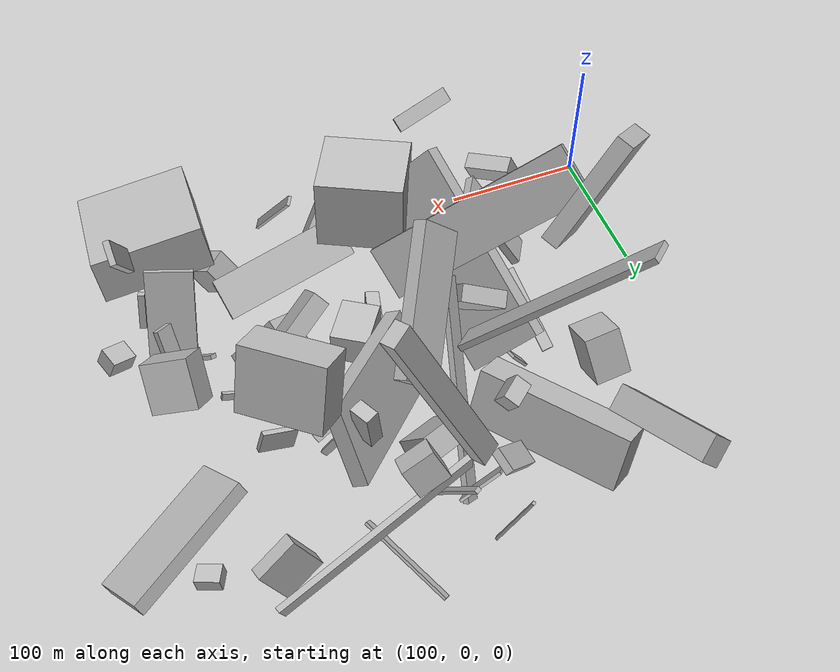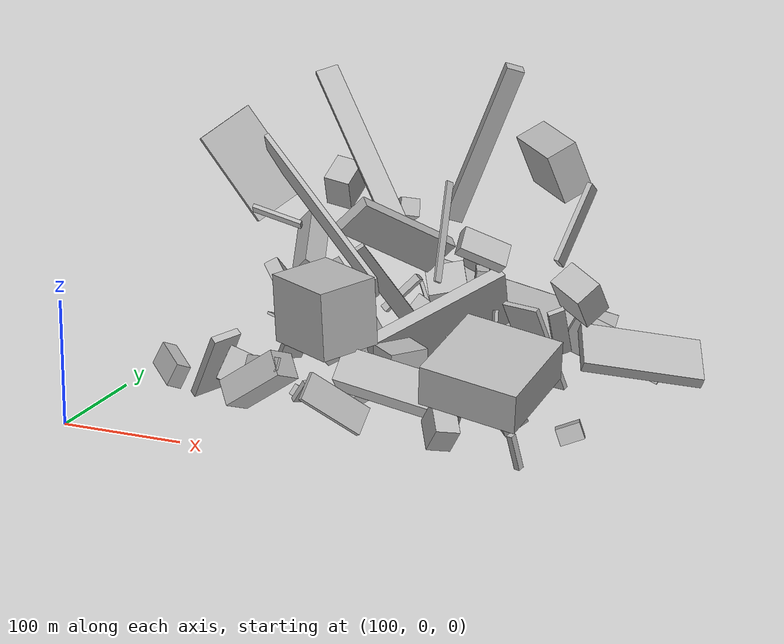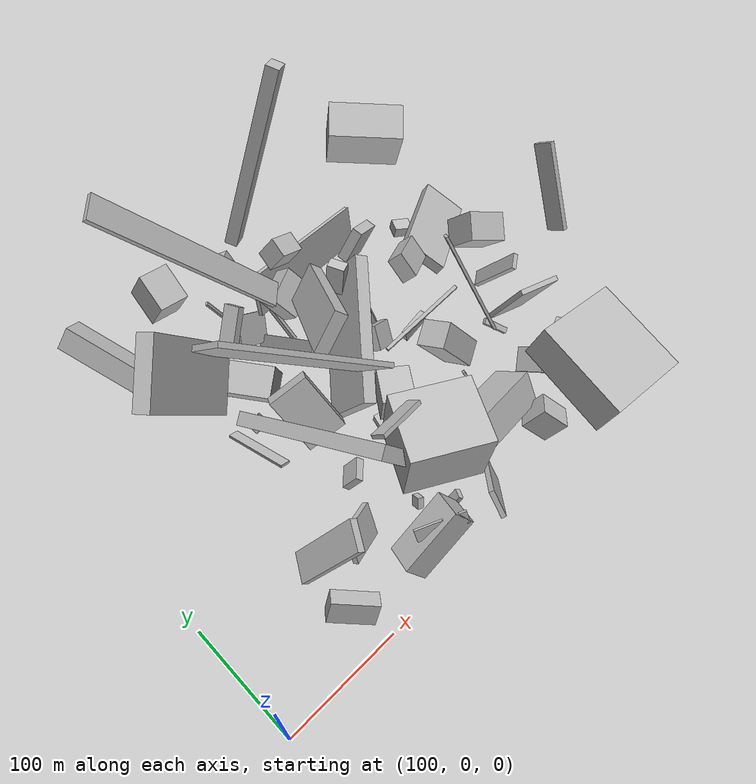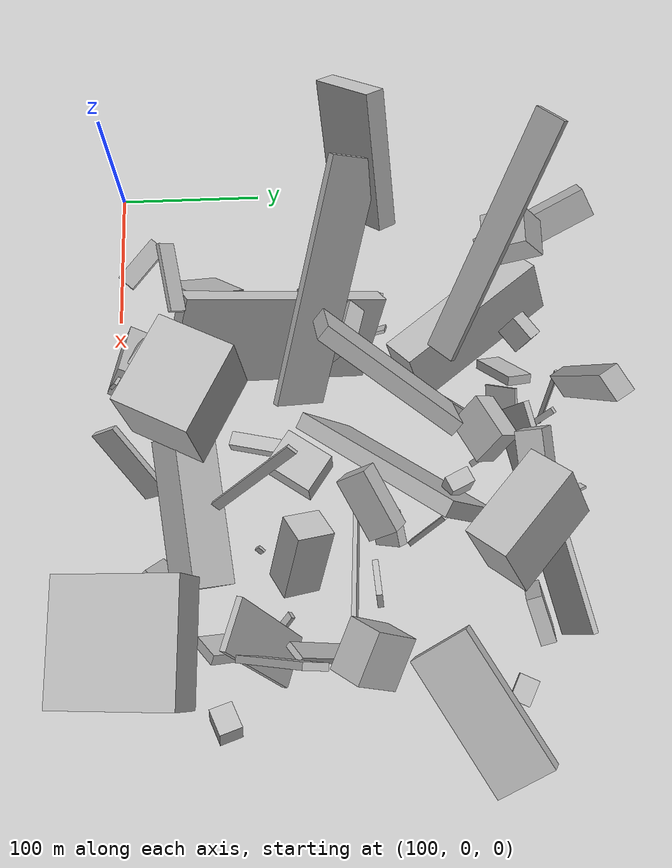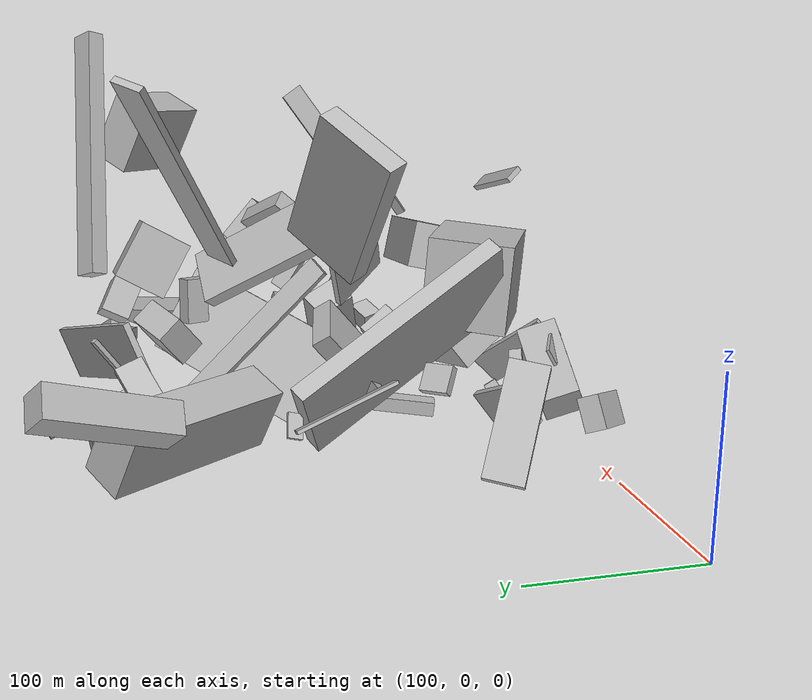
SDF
<sdf version="1.6">
 <world name="default">
  <model name="building_4">
   <static>0</static>
   <pose>246.0392381697584 112.40709381723941 72.94121580072749 0.8314418925521231 -0.8509778097233889 2.696568925000398</pose>
   <link name="link">
    <gravity>0</gravity>
    <pose>0 0 5.5 0 0 0</pose>
    <collision name="collision"><geometry><box><size>59 145 11</size></box></geometry></collision>
    <visual name="visual">
     <cast_shadows>0</cast_shadows>
     <geometry><box><size>59 145 11</size></box></geometry>
     <material>
      <script>
       <uri>model://HANNAS_wall/materials/scripts</uri>
       <uri>model://HANNAS_wall/materials/textures</uri>
       <name>vrc/HANNAS_wall</name>
      </script>
     </material>
    </visual>
   </link>
  </model>
  <model name="building_5">
   <static>0</static>
   <pose>287.5229218052627 213.38739787235647 123.43802710903616 0.73372761388437 0.2270527168911474 -2.3873085260724936</pose>
   <link name="link">
    <gravity>0</gravity>
    <pose>0 0 75.0 0 0 0</pose>
    <collision name="collision"><geometry><box><size>19 4 150</size></box></geometry></collision>
    <visual name="visual">
     <cast_shadows>0</cast_shadows>
     <geometry><box><size>19 4 150</size></box></geometry>
     <material>
      <script>
       <uri>model://HANNAS_wall/materials/scripts</uri>
       <uri>model://HANNAS_wall/materials/textures</uri>
       <name>vrc/HANNAS_wall</name>
      </script>
     </material>
    </visual>
   </link>
  </model>
  <model name="building_11">
   <static>0</static>
   <pose>305.34416889173406 286.51877537634414 113.38540585402663 -0.25738495963674096 -0.30998204344259406 -2.5458783594934444</pose>
   <link name="link">
    <gravity>0</gravity>
    <pose>0 0 72.0 0 0 0</pose>
    <collision name="collision"><geometry><box><size>15 10 144</size></box></geometry></collision>
    <visual name="visual">
     <cast_shadows>0</cast_shadows>
     <geometry><box><size>15 10 144</size></box></geometry>
     <material>
      <script>
       <uri>model://HANNAS_wall/materials/scripts</uri>
       <uri>model://HANNAS_wall/materials/textures</uri>
       <name>vrc/HANNAS_wall</name>
      </script>
     </material>
    </visual>
   </link>
  </model>
  <model name="building_13">
   <static>0</static>
   <pose>264.48225167235995 198.23878747054633 40.77193721252804 1.5332335217083308 0.4482326884495188 -2.51620579279033</pose>
   <link name="link">
    <gravity>0</gravity>
    <pose>0 0 54.5 0 0 0</pose>
    <collision name="collision"><geometry><box><size>26 39 109</size></box></geometry></collision>
    <visual name="visual">
     <cast_shadows>0</cast_shadows>
     <geometry><box><size>26 39 109</size></box></geometry>
     <material>
      <script>
       <uri>model://HANNAS_wall/materials/scripts</uri>
       <uri>model://HANNAS_wall/materials/textures</uri>
       <name>vrc/HANNAS_wall</name>
      </script>
     </material>
    </visual>
   </link>
  </model>
  <model name="building_25">
   <static>0</static>
   <pose>354.780059556248 68.91982962822244 39.401578939200036 0.935533526245235 0.2141554111805798 0.10981015580507866</pose>
   <link name="link">
    <gravity>0</gravity>
    <pose>0 0 15.0 0 0 0</pose>
    <collision name="collision"><geometry><box><size>97 28 30</size></box></geometry></collision>
    <visual name="visual">
     <cast_shadows>0</cast_shadows>
     <geometry><box><size>97 28 30</size></box></geometry>
     <material>
      <script>
       <uri>model://HANNAS_wall/materials/scripts</uri>
       <uri>model://HANNAS_wall/materials/textures</uri>
       <name>vrc/HANNAS_wall</name>
      </script>
     </material>
    </visual>
   </link>
  </model>
  <model name="building_26">
   <static>0</static>
   <pose>447.8451436361768 59.502343330706104 91.80245957601797 1.8022780283147475 0.1440748117896792 -0.04991635219224347</pose>
   <link name="link">
    <gravity>0</gravity>
    <pose>0 0 40.0 0 0 0</pose>
    <collision name="collision"><geometry><box><size>77 32 80</size></box></geometry></collision>
    <visual name="visual">
     <cast_shadows>0</cast_shadows>
     <geometry><box><size>77 32 80</size></box></geometry>
     <material>
      <script>
       <uri>model://HANNAS_wall/materials/scripts</uri>
       <uri>model://HANNAS_wall/materials/textures</uri>
       <name>vrc/HANNAS_wall</name>
      </script>
     </material>
    </visual>
   </link>
  </model>
  <model name="building_31">
   <static>0</static>
   <pose>311.9223770849996 182.14420041256554 138.3061652181933 2.5432250968559402 0.5255048459266045 -0.8384274217295999</pose>
   <link name="link">
    <gravity>0</gravity>
    <pose>0 0 16.5 0 0 0</pose>
    <collision name="collision"><geometry><box><size>10 101 33</size></box></geometry></collision>
    <visual name="visual">
     <cast_shadows>0</cast_shadows>
     <geometry><box><size>10 101 33</size></box></geometry>
     <material>
      <script>
       <uri>model://HANNAS_wall/materials/scripts</uri>
       <uri>model://HANNAS_wall/materials/textures</uri>
       <name>vrc/HANNAS_wall</name>
      </script>
     </material>
    </visual>
   </link>
  </model>
  <model name="building_32">
   <static>0</static>
   <pose>473.5617789788256 121.758763702298 168.416634408525 0.30198070280258865 -0.9400561170758166 1.226183920578841</pose>
   <link name="link">
    <gravity>0</gravity>
    <pose>0 0 7.5 0 0 0</pose>
    <collision name="collision"><geometry><box><size>64 4 15</size></box></geometry></collision>
    <visual name="visual">
     <cast_shadows>0</cast_shadows>
     <geometry><box><size>64 4 15</size></box></geometry>
     <material>
      <script>
       <uri>model://HANNAS_wall/materials/scripts</uri>
       <uri>model://HANNAS_wall/materials/textures</uri>
       <name>vrc/HANNAS_wall</name>
      </script>
     </material>
    </visual>
   </link>
  </model>
  <model name="building_35">
   <static>0</static>
   <pose>306.7212315610256 127.46683124068255 99.01429808339688 -0.6370680333195952 0.666483974549632 1.9316752935614816</pose>
   <link name="link">
    <gravity>0</gravity>
    <pose>0 0 75.0 0 0 0</pose>
    <collision name="collision"><geometry><box><size>37 4 150</size></box></geometry></collision>
    <visual name="visual">
     <cast_shadows>0</cast_shadows>
     <geometry><box><size>37 4 150</size></box></geometry>
     <material>
      <script>
       <uri>model://HANNAS_wall/materials/scripts</uri>
       <uri>model://HANNAS_wall/materials/textures</uri>
       <name>vrc/HANNAS_wall</name>
      </script>
     </material>
    </visual>
   </link>
  </model>
  <model name="building_40">
   <static>0</static>
   <pose>196.22379663635272 66.03756990982114 44.847923159565646 2.195942374353668 -0.11746353973589373 1.0421103361070279</pose>
   <link name="link">
    <gravity>0</gravity>
    <pose>0 0 3.0 0 0 0</pose>
    <collision name="collision"><geometry><box><size>24 70 6</size></box></geometry></collision>
    <visual name="visual">
     <cast_shadows>0</cast_shadows>
     <geometry><box><size>24 70 6</size></box></geometry>
     <material>
      <script>
       <uri>model://HANNAS_wall/materials/scripts</uri>
       <uri>model://HANNAS_wall/materials/textures</uri>
       <name>vrc/HANNAS_wall</name>
      </script>
     </material>
    </visual>
   </link>
  </model>
  <model name="building_42">
   <static>0</static>
   <pose>413.5281500367438 251.74328512992653 162.5584119064588 0.42518302474043196 0.08525247721073136 -0.7349285900145905</pose>
   <link name="link">
    <gravity>0</gravity>
    <pose>0 0 21.5 0 0 0</pose>
    <collision name="collision"><geometry><box><size>54 26 43</size></box></geometry></collision>
    <visual name="visual">
     <cast_shadows>0</cast_shadows>
     <geometry><box><size>54 26 43</size></box></geometry>
     <material>
      <script>
       <uri>model://HANNAS_wall/materials/scripts</uri>
       <uri>model://HANNAS_wall/materials/textures</uri>
       <name>vrc/HANNAS_wall</name>
      </script>
     </material>
    </visual>
   </link>
  </model>
  <model name="building_47">
   <static>0</static>
   <pose>282.3333516618749 206.32558568765282 60.27367444680189 -0.6378160163743561 -0.8135453570839897 -1.7786275774059461</pose>
   <link name="link">
    <gravity>0</gravity>
    <pose>0 0 6.5 0 0 0</pose>
    <collision name="collision"><geometry><box><size>150 4 13</size></box></geometry></collision>
    <visual name="visual">
     <cast_shadows>0</cast_shadows>
     <geometry><box><size>150 4 13</size></box></geometry>
     <material>
      <script>
       <uri>model://HANNAS_wall/materials/scripts</uri>
       <uri>model://HANNAS_wall/materials/textures</uri>
       <name>vrc/HANNAS_wall</name>
      </script>
     </material>
    </visual>
   </link>
  </model>
  <model name="building_52">
   <static>0</static>
   <pose>260.45096502845166 31.132917213910975 47.480260439311145 1.1229656785537947 -0.6097243819232256 -0.043908216196138904</pose>
   <link name="link">
    <gravity>0</gravity>
    <pose>0 0 12.0 0 0 0</pose>
    <collision name="collision"><geometry><box><size>54 21 24</size></box></geometry></collision>
    <visual name="visual">
     <cast_shadows>0</cast_shadows>
     <geometry><box><size>54 21 24</size></box></geometry>
     <material>
      <script>
       <uri>model://HANNAS_wall/materials/scripts</uri>
       <uri>model://HANNAS_wall/materials/textures</uri>
       <name>vrc/HANNAS_wall</name>
      </script>
     </material>
    </visual>
   </link>
  </model>
  <model name="building_56">
   <static>0</static>
   <pose>353.1146900377908 229.15745046192978 81.06606824895431 1.6246591654610778 0.09088854913317261 0.43664834529230867</pose>
   <link name="link">
    <gravity>0</gravity>
    <pose>0 0 7.5 0 0 0</pose>
    <collision name="collision"><geometry><box><size>10 28 15</size></box></geometry></collision>
    <visual name="visual">
     <cast_shadows>0</cast_shadows>
     <geometry><box><size>10 28 15</size></box></geometry>
     <material>
      <script>
       <uri>model://HANNAS_wall/materials/scripts</uri>
       <uri>model://HANNAS_wall/materials/textures</uri>
       <name>vrc/HANNAS_wall</name>
      </script>
     </material>
    </visual>
   </link>
  </model>
  <model name="building_57">
   <static>0</static>
   <pose>372.8397094920472 229.54579999024057 72.28215962919838 2.254910144712333 -1.003458802321089 -1.3164508423487904</pose>
   <link name="link">
    <gravity>0</gravity>
    <pose>0 0 61.5 0 0 0</pose>
    <collision name="collision"><geometry><box><size>59 11 123</size></box></geometry></collision>
    <visual name="visual">
     <cast_shadows>0</cast_shadows>
     <geometry><box><size>59 11 123</size></box></geometry>
     <material>
      <script>
       <uri>model://HANNAS_wall/materials/scripts</uri>
       <uri>model://HANNAS_wall/materials/textures</uri>
       <name>vrc/HANNAS_wall</name>
      </script>
     </material>
    </visual>
   </link>
  </model>
  <model name="building_61">
   <static>0</static>
   <pose>454.4455979796617 157.19957674618342 95.64992392870477 -0.5362597075483604 -0.8630973474018058 -1.589940140255707</pose>
   <link name="link">
    <gravity>0</gravity>
    <pose>0 0 11.5 0 0 0</pose>
    <collision name="collision"><geometry><box><size>33 32 23</size></box></geometry></collision>
    <visual name="visual">
     <cast_shadows>0</cast_shadows>
     <geometry><box><size>33 32 23</size></box></geometry>
     <material>
      <script>
       <uri>model://HANNAS_wall/materials/scripts</uri>
       <uri>model://HANNAS_wall/materials/textures</uri>
       <name>vrc/HANNAS_wall</name>
      </script>
     </material>
    </visual>
   </link>
  </model>
  <model name="building_64">
   <static>0</static>
   <pose>301.7135998658954 262.4967223012218 66.36645070043379 2.351691197250459 -1.1669851162304328 1.0849620932479414</pose>
   <link name="link">
    <gravity>0</gravity>
    <pose>0 0 75.0 0 0 0</pose>
    <collision name="collision"><geometry><box><size>36 4 150</size></box></geometry></collision>
    <visual name="visual">
     <cast_shadows>0</cast_shadows>
     <geometry><box><size>36 4 150</size></box></geometry>
     <material>
      <script>
       <uri>model://HANNAS_wall/materials/scripts</uri>
       <uri>model://HANNAS_wall/materials/textures</uri>
       <name>vrc/HANNAS_wall</name>
      </script>
     </material>
    </visual>
   </link>
  </model>
  <model name="building_65">
   <static>0</static>
   <pose>385.9157158319795 136.11774128148485 46.58962567178883 1.1092816661097866 -0.4267034483785469 0.4796998627245925</pose>
   <link name="link">
    <gravity>0</gravity>
    <pose>0 0 12.5 0 0 0</pose>
    <collision name="collision"><geometry><box><size>22 49 25</size></box></geometry></collision>
    <visual name="visual">
     <cast_shadows>0</cast_shadows>
     <geometry><box><size>22 49 25</size></box></geometry>
     <material>
      <script>
       <uri>model://HANNAS_wall/materials/scripts</uri>
       <uri>model://HANNAS_wall/materials/textures</uri>
       <name>vrc/HANNAS_wall</name>
      </script>
     </material>
    </visual>
   </link>
  </model>
  <model name="building_69">
   <static>0</static>
   <pose>436.08399933277644 271.3796080361466 45.21805190600404 -2.664721027043559 -0.257553861634617 1.7644111512376273</pose>
   <link name="link">
    <gravity>0</gravity>
    <pose>0 0 16.5 0 0 0</pose>
    <collision name="collision"><geometry><box><size>10 31 33</size></box></geometry></collision>
    <visual name="visual">
     <cast_shadows>0</cast_shadows>
     <geometry><box><size>10 31 33</size></box></geometry>
     <material>
      <script>
       <uri>model://HANNAS_wall/materials/scripts</uri>
       <uri>model://HANNAS_wall/materials/textures</uri>
       <name>vrc/HANNAS_wall</name>
      </script>
     </material>
    </visual>
   </link>
  </model>
  <model name="building_72">
   <static>0</static>
   <pose>454.28340206718485 117.21335669131878 44.15490676215887 -0.030163057962086556 -0.4453551707273067 1.2679857277166433</pose>
   <link name="link">
    <gravity>0</gravity>
    <pose>0 0 38.5 0 0 0</pose>
    <collision name="collision"><geometry><box><size>4 32 77</size></box></geometry></collision>
    <visual name="visual">
     <cast_shadows>0</cast_shadows>
     <geometry><box><size>4 32 77</size></box></geometry>
     <material>
      <script>
       <uri>model://HANNAS_wall/materials/scripts</uri>
       <uri>model://HANNAS_wall/materials/textures</uri>
       <name>vrc/HANNAS_wall</name>
      </script>
     </material>
    </visual>
   </link>
  </model>
  <model name="building_85">
   <static>0</static>
   <pose>240.416222263331 65.22586051979188 34.28164811245603 -1.0879324687507288 0.44846417510124187 2.133225262691642</pose>
   <link name="link">
    <gravity>0</gravity>
    <pose>0 0 17.5 0 0 0</pose>
    <collision name="collision"><geometry><box><size>4 28 35</size></box></geometry></collision>
    <visual name="visual">
     <cast_shadows>0</cast_shadows>
     <geometry><box><size>4 28 35</size></box></geometry>
     <material>
      <script>
       <uri>model://HANNAS_wall/materials/scripts</uri>
       <uri>model://HANNAS_wall/materials/textures</uri>
       <name>vrc/HANNAS_wall</name>
      </script>
     </material>
    </visual>
   </link>
  </model>
  <model name="building_91">
   <static>0</static>
   <pose>320.65696987921797 8.348453931691092 34.6121324711334 0.5003229618236404 -0.641744812973406 -2.418009031039265</pose>
   <link name="link">
    <gravity>0</gravity>
    <pose>0 0 11.5 0 0 0</pose>
    <collision name="collision"><geometry><box><size>56 4 23</size></box></geometry></collision>
    <visual name="visual">
     <cast_shadows>0</cast_shadows>
     <geometry><box><size>56 4 23</size></box></geometry>
     <material>
      <script>
       <uri>model://HANNAS_wall/materials/scripts</uri>
       <uri>model://HANNAS_wall/materials/textures</uri>
       <name>vrc/HANNAS_wall</name>
      </script>
     </material>
    </visual>
   </link>
  </model>
  <model name="building_92">
   <static>0</static>
   <pose>316.45136220696304 249.41329582388735 66.57314789769855 -0.2434915443502975 -0.8329252587732981 2.1820408574203</pose>
   <link name="link">
    <gravity>0</gravity>
    <pose>0 0 8.5 0 0 0</pose>
    <collision name="collision"><geometry><box><size>26 32 17</size></box></geometry></collision>
    <visual name="visual">
     <cast_shadows>0</cast_shadows>
     <geometry><box><size>26 32 17</size></box></geometry>
     <material>
      <script>
       <uri>model://HANNAS_wall/materials/scripts</uri>
       <uri>model://HANNAS_wall/materials/textures</uri>
       <name>vrc/HANNAS_wall</name>
      </script>
     </material>
    </visual>
   </link>
  </model>
  <model name="building_95">
   <static>0</static>
   <pose>453.08212961319083 149.34328527232154 59.796124895381276 0.5402470935774003 -0.2983659411562641 0.6074694178092093</pose>
   <link name="link">
    <gravity>0</gravity>
    <pose>0 0 25.5 0 0 0</pose>
    <collision name="collision"><geometry><box><size>13 4 51</size></box></geometry></collision>
    <visual name="visual">
     <cast_shadows>0</cast_shadows>
     <geometry><box><size>13 4 51</size></box></geometry>
     <material>
      <script>
       <uri>model://HANNAS_wall/materials/scripts</uri>
       <uri>model://HANNAS_wall/materials/textures</uri>
       <name>vrc/HANNAS_wall</name>
      </script>
     </material>
    </visual>
   </link>
  </model>
  <model name="building_96">
   <static>0</static>
   <pose>446.94522591125275 207.65425903575442 45.12656190214735 -1.7895482205843147 0.51765319940733 -1.1455745047781436</pose>
   <link name="link">
    <gravity>0</gravity>
    <pose>0 0 49.0 0 0 0</pose>
    <collision name="collision"><geometry><box><size>42 10 98</size></box></geometry></collision>
    <visual name="visual">
     <cast_shadows>0</cast_shadows>
     <geometry><box><size>42 10 98</size></box></geometry>
     <material>
      <script>
       <uri>model://HANNAS_wall/materials/scripts</uri>
       <uri>model://HANNAS_wall/materials/textures</uri>
       <name>vrc/HANNAS_wall</name>
      </script>
     </material>
    </visual>
   </link>
  </model>
  <model name="building_106">
   <static>0</static>
   <pose>395.75903653468845 33.83776815754533 22.225794874066523 -0.21734268041119242 0.6255718339156412 -0.9968305583392614</pose>
   <link name="link">
    <gravity>0</gravity>
    <pose>0 0 12.0 0 0 0</pose>
    <collision name="collision"><geometry><box><size>26 19 24</size></box></geometry></collision>
    <visual name="visual">
     <cast_shadows>0</cast_shadows>
     <geometry><box><size>26 19 24</size></box></geometry>
     <material>
      <script>
       <uri>model://HANNAS_wall/materials/scripts</uri>
       <uri>model://HANNAS_wall/materials/textures</uri>
       <name>vrc/HANNAS_wall</name>
      </script>
     </material>
    </visual>
   </link>
  </model>
  <model name="building_107">
   <static>0</static>
   <pose>185.52399391607366 27.468730476848506 49.8732657765925 1.1753756690091286 0.23196477853583486 -0.761419468302994</pose>
   <link name="link">
    <gravity>0</gravity>
    <pose>0 0 6.0 0 0 0</pose>
    <collision name="collision"><geometry><box><size>34 19 12</size></box></geometry></collision>
    <visual name="visual">
     <cast_shadows>0</cast_shadows>
     <geometry><box><size>34 19 12</size></box></geometry>
     <material>
      <script>
       <uri>model://HANNAS_wall/materials/scripts</uri>
       <uri>model://HANNAS_wall/materials/textures</uri>
       <name>vrc/HANNAS_wall</name>
      </script>
     </material>
    </visual>
   </link>
  </model>
  <model name="building_111">
   <static>0</static>
   <pose>250.73970251106488 163.23338309867165 92.17581460422792 -2.6780576166435197 -0.5688414199330818 -2.0716317546886214</pose>
   <link name="link">
    <gravity>0</gravity>
    <pose>0 0 25.0 0 0 0</pose>
    <collision name="collision"><geometry><box><size>12 33 50</size></box></geometry></collision>
    <visual name="visual">
     <cast_shadows>0</cast_shadows>
     <geometry><box><size>12 33 50</size></box></geometry>
     <material>
      <script>
       <uri>model://HANNAS_wall/materials/scripts</uri>
       <uri>model://HANNAS_wall/materials/textures</uri>
       <name>vrc/HANNAS_wall</name>
      </script>
     </material>
    </visual>
   </link>
  </model>
  <model name="building_112">
   <static>0</static>
   <pose>377.76159432947037 79.68784375502347 126.55154371471686 -0.5059033037430103 -0.37675251709523605 -0.3878019536221783</pose>
   <link name="link">
    <gravity>0</gravity>
    <pose>0 0 40.0 0 0 0</pose>
    <collision name="collision"><geometry><box><size>2 6 80</size></box></geometry></collision>
    <visual name="visual">
     <cast_shadows>0</cast_shadows>
     <geometry><box><size>2 6 80</size></box></geometry>
     <material>
      <script>
       <uri>model://HANNAS_wall/materials/scripts</uri>
       <uri>model://HANNAS_wall/materials/textures</uri>
       <name>vrc/HANNAS_wall</name>
      </script>
     </material>
    </visual>
   </link>
  </model>
  <model name="building_128">
   <static>0</static>
   <pose>280.2565296004384 257.2763924448837 127.4677126122923 2.068020042494187 -0.19845036680315034 -2.477907632876731</pose>
   <link name="link">
    <gravity>0</gravity>
    <pose>0 0 5.5 0 0 0</pose>
    <collision name="collision"><geometry><box><size>16 15 11</size></box></geometry></collision>
    <visual name="visual">
     <cast_shadows>0</cast_shadows>
     <geometry><box><size>16 15 11</size></box></geometry>
     <material>
      <script>
       <uri>model://HANNAS_wall/materials/scripts</uri>
       <uri>model://HANNAS_wall/materials/textures</uri>
       <name>vrc/HANNAS_wall</name>
      </script>
     </material>
    </visual>
   </link>
  </model>
  <model name="building_130">
   <static>0</static>
   <pose>434.6190188717201 67.3855622748862 22.317455046680823 0.8487876148262001 -0.6623849304663758 2.7362673815367633</pose>
   <link name="link">
    <gravity>0</gravity>
    <pose>0 0 10.5 0 0 0</pose>
    <collision name="collision"><geometry><box><size>7 26 21</size></box></geometry></collision>
    <visual name="visual">
     <cast_shadows>0</cast_shadows>
     <geometry><box><size>7 26 21</size></box></geometry>
     <material>
      <script>
       <uri>model://HANNAS_wall/materials/scripts</uri>
       <uri>model://HANNAS_wall/materials/textures</uri>
       <name>vrc/HANNAS_wall</name>
      </script>
     </material>
    </visual>
   </link>
  </model>
  <model name="building_131">
   <static>0</static>
   <pose>434.077469156358 112.13345040199829 45.20937891985273 0.4895560917319079 0.6068814602045193 -0.7798696031605232</pose>
   <link name="link">
    <gravity>0</gravity>
    <pose>0 0 1.5 0 0 0</pose>
    <collision name="collision"><geometry><box><size>24 5 3</size></box></geometry></collision>
    <visual name="visual">
     <cast_shadows>0</cast_shadows>
     <geometry><box><size>24 5 3</size></box></geometry>
     <material>
      <script>
       <uri>model://HANNAS_wall/materials/scripts</uri>
       <uri>model://HANNAS_wall/materials/textures</uri>
       <name>vrc/HANNAS_wall</name>
      </script>
     </material>
    </visual>
   </link>
  </model>
  <model name="building_146">
   <static>0</static>
   <pose>456.26317906217804 35.78442124592096 18.705291205594964 1.5317019867256643 -0.28252553690335863 1.2298174361894851</pose>
   <link name="link">
    <gravity>0</gravity>
    <pose>0 0 2.5 0 0 0</pose>
    <collision name="collision"><geometry><box><size>5 29 5</size></box></geometry></collision>
    <visual name="visual">
     <cast_shadows>0</cast_shadows>
     <geometry><box><size>5 29 5</size></box></geometry>
     <material>
      <script>
       <uri>model://HANNAS_wall/materials/scripts</uri>
       <uri>model://HANNAS_wall/materials/textures</uri>
       <name>vrc/HANNAS_wall</name>
      </script>
     </material>
    </visual>
   </link>
  </model>
  <model name="building_153">
   <static>0</static>
   <pose>291.0009950655417 32.86070005391955 43.388569477439624 -1.2447094692726133 0.9730975646134671 2.9104955311684546</pose>
   <link name="link">
    <gravity>0</gravity>
    <pose>0 0 4.0 0 0 0</pose>
    <collision name="collision"><geometry><box><size>20 4 8</size></box></geometry></collision>
    <visual name="visual">
     <cast_shadows>0</cast_shadows>
     <geometry><box><size>20 4 8</size></box></geometry>
     <material>
      <script>
       <uri>model://HANNAS_wall/materials/scripts</uri>
       <uri>model://HANNAS_wall/materials/textures</uri>
       <name>vrc/HANNAS_wall</name>
      </script>
     </material>
    </visual>
   </link>
  </model>
  <model name="building_154">
   <static>0</static>
   <pose>318.1374322384538 112.27079649913779 42.66951852603398 -1.6466366232079241 -1.515610139694536 -0.5426875106636128</pose>
   <link name="link">
    <gravity>0</gravity>
    <pose>0 0 16.5 0 0 0</pose>
    <collision name="collision"><geometry><box><size>25 27 33</size></box></geometry></collision>
    <visual name="visual">
     <cast_shadows>0</cast_shadows>
     <geometry><box><size>25 27 33</size></box></geometry>
     <material>
      <script>
       <uri>model://HANNAS_wall/materials/scripts</uri>
       <uri>model://HANNAS_wall/materials/textures</uri>
       <name>vrc/HANNAS_wall</name>
      </script>
     </material>
    </visual>
   </link>
  </model>
  <model name="building_155">
   <static>0</static>
   <pose>231.01100387645133 182.44403257926749 39.36619821739271 2.2267940665498998 -0.27893308383891185 1.6836819148969757</pose>
   <link name="link">
    <gravity>0</gravity>
    <pose>0 0 1.0 0 0 0</pose>
    <collision name="collision"><geometry><box><size>9 15 2</size></box></geometry></collision>
    <visual name="visual">
     <cast_shadows>0</cast_shadows>
     <geometry><box><size>9 15 2</size></box></geometry>
     <material>
      <script>
       <uri>model://HANNAS_wall/materials/scripts</uri>
       <uri>model://HANNAS_wall/materials/textures</uri>
       <name>vrc/HANNAS_wall</name>
      </script>
     </material>
    </visual>
   </link>
  </model>
  <model name="building_156">
   <static>0</static>
   <pose>322.195557528922 42.64585964900399 100.81195502283143 1.5473486673827548 0.07119088712216483 -2.0610438820339554</pose>
   <link name="link">
    <gravity>0</gravity>
    <pose>0 0 30.0 0 0 0</pose>
    <collision name="collision"><geometry><box><size>51 54 60</size></box></geometry></collision>
    <visual name="visual">
     <cast_shadows>0</cast_shadows>
     <geometry><box><size>51 54 60</size></box></geometry>
     <material>
      <script>
       <uri>model://HANNAS_wall/materials/scripts</uri>
       <uri>model://HANNAS_wall/materials/textures</uri>
       <name>vrc/HANNAS_wall</name>
      </script>
     </material>
    </visual>
   </link>
  </model>
  <model name="building_157">
   <static>0</static>
   <pose>275.50366368404934 52.91177106332048 33.085630806211604 0.9771732514532435 0.2697372526970967 -0.3404347002122373</pose>
   <link name="link">
    <gravity>0</gravity>
    <pose>0 0 4.0 0 0 0</pose>
    <collision name="collision"><geometry><box><size>5 9 8</size></box></geometry></collision>
    <visual name="visual">
     <cast_shadows>0</cast_shadows>
     <geometry><box><size>5 9 8</size></box></geometry>
     <material>
      <script>
       <uri>model://HANNAS_wall/materials/scripts</uri>
       <uri>model://HANNAS_wall/materials/textures</uri>
       <name>vrc/HANNAS_wall</name>
      </script>
     </material>
    </visual>
   </link>
  </model>
  <model name="building_163">
   <static>0</static>
   <pose>306.07970689309985 104.26867139262067 15.112155885027008 0.05624598479480338 0.10560473180304879 -1.8300017309224361</pose>
   <link name="link">
    <gravity>0</gravity>
    <pose>0 0 4.5 0 0 0</pose>
    <collision name="collision"><geometry><box><size>50 10 9</size></box></geometry></collision>
    <visual name="visual">
     <cast_shadows>0</cast_shadows>
     <geometry><box><size>50 10 9</size></box></geometry>
     <material>
      <script>
       <uri>model://HANNAS_wall/materials/scripts</uri>
       <uri>model://HANNAS_wall/materials/textures</uri>
       <name>vrc/HANNAS_wall</name>
      </script>
     </material>
    </visual>
   </link>
  </model>
  <model name="building_165">
   <static>0</static>
   <pose>209.9570924326149 259.25216784145204 142.7586215533629 1.753439900801315 -0.5170048069057078 1.485018787866352</pose>
   <link name="link">
    <gravity>0</gravity>
    <pose>0 0 11.0 0 0 0</pose>
    <collision name="collision"><geometry><box><size>27 30 22</size></box></geometry></collision>
    <visual name="visual">
     <cast_shadows>0</cast_shadows>
     <geometry><box><size>27 30 22</size></box></geometry>
     <material>
      <script>
       <uri>model://HANNAS_wall/materials/scripts</uri>
       <uri>model://HANNAS_wall/materials/textures</uri>
       <name>vrc/HANNAS_wall</name>
      </script>
     </material>
    </visual>
   </link>
  </model>
  <model name="building_168">
   <static>0</static>
   <pose>255.74972192323426 60.440548167818704 170.26516305881603 2.789112486142836 -0.6510210177538204 -1.1976603669664927</pose>
   <link name="link">
    <gravity>0</gravity>
    <pose>0 0 1.5 0 0 0</pose>
    <collision name="collision"><geometry><box><size>10 39 3</size></box></geometry></collision>
    <visual name="visual">
     <cast_shadows>0</cast_shadows>
     <geometry><box><size>10 39 3</size></box></geometry>
     <material>
      <script>
       <uri>model://HANNAS_wall/materials/scripts</uri>
       <uri>model://HANNAS_wall/materials/textures</uri>
       <name>vrc/HANNAS_wall</name>
      </script>
     </material>
    </visual>
   </link>
  </model>
  <model name="building_180">
   <static>0</static>
   <pose>347.90890793787656 271.2435691468454 84.27662088994273 -1.1221927464581516 -0.45134456379566407 1.4718463061459004</pose>
   <link name="link">
    <gravity>0</gravity>
    <pose>0 0 11.5 0 0 0</pose>
    <collision name="collision"><geometry><box><size>17 22 23</size></box></geometry></collision>
    <visual name="visual">
     <cast_shadows>0</cast_shadows>
     <geometry><box><size>17 22 23</size></box></geometry>
     <material>
      <script>
       <uri>model://HANNAS_wall/materials/scripts</uri>
       <uri>model://HANNAS_wall/materials/textures</uri>
       <name>vrc/HANNAS_wall</name>
      </script>
     </material>
    </visual>
   </link>
  </model>
  <model name="building_182">
   <static>0</static>
   <pose>312.2959119926933 263.7757717848283 40.76879539500266 1.8971170237978545 -0.9402875179920084 1.835138348648597</pose>
   <link name="link">
    <gravity>0</gravity>
    <pose>0 0 2.0 0 0 0</pose>
    <collision name="collision"><geometry><box><size>80 3 4</size></box></geometry></collision>
    <visual name="visual">
     <cast_shadows>0</cast_shadows>
     <geometry><box><size>80 3 4</size></box></geometry>
     <material>
      <script>
       <uri>model://HANNAS_wall/materials/scripts</uri>
       <uri>model://HANNAS_wall/materials/textures</uri>
       <name>vrc/HANNAS_wall</name>
      </script>
     </material>
    </visual>
   </link>
  </model>
  <model name="building_183">
   <static>0</static>
   <pose>364.35550209647295 158.2215136753544 136.12535148123646 2.1657854696081156 -0.7211253087540404 1.6644950964328689</pose>
   <link name="link">
    <gravity>0</gravity>
    <pose>0 0 19.5 0 0 0</pose>
    <collision name="collision"><geometry><box><size>20 12 39</size></box></geometry></collision>
    <visual name="visual">
     <cast_shadows>0</cast_shadows>
     <geometry><box><size>20 12 39</size></box></geometry>
     <material>
      <script>
       <uri>model://HANNAS_wall/materials/scripts</uri>
       <uri>model://HANNAS_wall/materials/textures</uri>
       <name>vrc/HANNAS_wall</name>
      </script>
     </material>
    </visual>
   </link>
  </model>
  <model name="building_186">
   <static>0</static>
   <pose>487.92831237224135 226.5004776939767 23.401919923060355 -2.2285974149534904 1.0143070799375231 -2.24385920013958</pose>
   <link name="link">
    <gravity>0</gravity>
    <pose>0 0 9.0 0 0 0</pose>
    <collision name="collision"><geometry><box><size>3 2 18</size></box></geometry></collision>
    <visual name="visual">
     <cast_shadows>0</cast_shadows>
     <geometry><box><size>3 2 18</size></box></geometry>
     <material>
      <script>
       <uri>model://HANNAS_wall/materials/scripts</uri>
       <uri>model://HANNAS_wall/materials/textures</uri>
       <name>vrc/HANNAS_wall</name>
      </script>
     </material>
    </visual>
   </link>
  </model>
  <model name="building_189">
   <static>0</static>
   <pose>393.8604027112058 157.3793061087437 48.92706903941203 1.2680912334130343 0.27342320375567813 3.0729431380591965</pose>
   <link name="link">
    <gravity>0</gravity>
    <pose>0 0 1.5 0 0 0</pose>
    <collision name="collision"><geometry><box><size>80 5 3</size></box></geometry></collision>
    <visual name="visual">
     <cast_shadows>0</cast_shadows>
     <geometry><box><size>80 5 3</size></box></geometry>
     <material>
      <script>
       <uri>model://HANNAS_wall/materials/scripts</uri>
       <uri>model://HANNAS_wall/materials/textures</uri>
       <name>vrc/HANNAS_wall</name>
      </script>
     </material>
    </visual>
   </link>
  </model>
  <model name="building_191">
   <static>0</static>
   <pose>205.9970620396754 170.73205768971755 143.47229634182065 -0.3391972348626259 -0.5447258300976261 0.7447173518693629</pose>
   <link name="link">
    <gravity>0</gravity>
    <pose>0 0 40.0 0 0 0</pose>
    <collision name="collision"><geometry><box><size>46 12 80</size></box></geometry></collision>
    <visual name="visual">
     <cast_shadows>0</cast_shadows>
     <geometry><box><size>46 12 80</size></box></geometry>
     <material>
      <script>
       <uri>model://HANNAS_wall/materials/scripts</uri>
       <uri>model://HANNAS_wall/materials/textures</uri>
       <name>vrc/HANNAS_wall</name>
      </script>
     </material>
    </visual>
   </link>
  </model>
  <model name="building_196">
   <static>0</static>
   <pose>402.0115829986922 175.3011778567302 17.593865244292772 1.776036900625333 1.2656503909622316 0.26509495143482664</pose>
   <link name="link">
    <gravity>0</gravity>
    <pose>0 0 2.0 0 0 0</pose>
    <collision name="collision"><geometry><box><size>17 26 4</size></box></geometry></collision>
    <visual name="visual">
     <cast_shadows>0</cast_shadows>
     <geometry><box><size>17 26 4</size></box></geometry>
     <material>
      <script>
       <uri>model://HANNAS_wall/materials/scripts</uri>
       <uri>model://HANNAS_wall/materials/textures</uri>
       <name>vrc/HANNAS_wall</name>
      </script>
     </material>
    </visual>
   </link>
  </model>
  <model name="building_200">
   <static>0</static>
   <pose>484.60221661453625 75.10960315513773 30.344653853229072 -2.8080923410958003 -0.19147335625455517 -1.2292958106498648</pose>
   <link name="link">
    <gravity>0</gravity>
    <pose>0 0 6.5 0 0 0</pose>
    <collision name="collision"><geometry><box><size>15 19 13</size></box></geometry></collision>
    <visual name="visual">
     <cast_shadows>0</cast_shadows>
     <geometry><box><size>15 19 13</size></box></geometry>
     <material>
      <script>
       <uri>model://HANNAS_wall/materials/scripts</uri>
       <uri>model://HANNAS_wall/materials/textures</uri>
       <name>vrc/HANNAS_wall</name>
      </script>
     </material>
    </visual>
   </link>
  </model>
  <model name="building_215">
   <static>0</static>
   <pose>189.5697982609933 252.87228412989182 61.817065209057375 1.1668068742413595 -0.6402532511298378 -2.5405542911759245</pose>
   <link name="link">
    <gravity>0</gravity>
    <pose>0 0 38.5 0 0 0</pose>
    <collision name="collision"><geometry><box><size>19 19 77</size></box></geometry></collision>
    <visual name="visual">
     <cast_shadows>0</cast_shadows>
     <geometry><box><size>19 19 77</size></box></geometry>
     <material>
      <script>
       <uri>model://HANNAS_wall/materials/scripts</uri>
       <uri>model://HANNAS_wall/materials/textures</uri>
       <name>vrc/HANNAS_wall</name>
      </script>
     </material>
    </visual>
   </link>
  </model>
  <model name="building_216">
   <static>0</static>
   <pose>368.9433021686 256.5758579742969 21.38875635215069 1.889300504664428 0.6946223759496749 -2.456383694755283</pose>
   <link name="link">
    <gravity>0</gravity>
    <pose>0 0 35.0 0 0 0</pose>
    <collision name="collision"><geometry><box><size>6 2 70</size></box></geometry></collision>
    <visual name="visual">
     <cast_shadows>0</cast_shadows>
     <geometry><box><size>6 2 70</size></box></geometry>
     <material>
      <script>
       <uri>model://HANNAS_wall/materials/scripts</uri>
       <uri>model://HANNAS_wall/materials/textures</uri>
       <name>vrc/HANNAS_wall</name>
      </script>
     </material>
    </visual>
   </link>
  </model>
  <model name="building_217">
   <static>0</static>
   <pose>377.61249102479815 183.35204487285603 22.612984889521346 0.7956608771492053 0.7898216041954008 -1.983116394932418</pose>
   <link name="link">
    <gravity>0</gravity>
    <pose>0 0 11.5 0 0 0</pose>
    <collision name="collision"><geometry><box><size>22 7 23</size></box></geometry></collision>
    <visual name="visual">
     <cast_shadows>0</cast_shadows>
     <geometry><box><size>22 7 23</size></box></geometry>
     <material>
      <script>
       <uri>model://HANNAS_wall/materials/scripts</uri>
       <uri>model://HANNAS_wall/materials/textures</uri>
       <name>vrc/HANNAS_wall</name>
      </script>
     </material>
    </visual>
   </link>
  </model>
  <model name="building_219">
   <static>0</static>
   <pose>282.8695717550251 293.17897368846934 30.101130144413695 1.9472436631397658 0.2190789564119135 -2.417814559739028</pose>
   <link name="link">
    <gravity>0</gravity>
    <pose>0 0 1.0 0 0 0</pose>
    <collision name="collision"><geometry><box><size>3 48 2</size></box></geometry></collision>
    <visual name="visual">
     <cast_shadows>0</cast_shadows>
     <geometry><box><size>3 48 2</size></box></geometry>
     <material>
      <script>
       <uri>model://HANNAS_wall/materials/scripts</uri>
       <uri>model://HANNAS_wall/materials/textures</uri>
       <name>vrc/HANNAS_wall</name>
      </script>
     </material>
    </visual>
   </link>
  </model>
  <model name="building_220">
   <static>0</static>
   <pose>213.2316687699104 157.12284958845643 53.671159640573464 -0.38199442430198893 0.2910284301461766 -0.015428324767675404</pose>
   <link name="link">
    <gravity>0</gravity>
    <pose>0 0 1.0 0 0 0</pose>
    <collision name="collision"><geometry><box><size>8 62 2</size></box></geometry></collision>
    <visual name="visual">
     <cast_shadows>0</cast_shadows>
     <geometry><box><size>8 62 2</size></box></geometry>
     <material>
      <script>
       <uri>model://HANNAS_wall/materials/scripts</uri>
       <uri>model://HANNAS_wall/materials/textures</uri>
       <name>vrc/HANNAS_wall</name>
      </script>
     </material>
    </visual>
   </link>
  </model>
  <model name="building_228">
   <static>0</static>
   <pose>296.8247372620366 269.81570166413263 42.02124415309298 2.4998360955167125 -0.48696067340745813 -1.2017903016355462</pose>
   <link name="link">
    <gravity>0</gravity>
    <pose>0 0 14.0 0 0 0</pose>
    <collision name="collision"><geometry><box><size>2 32 28</size></box></geometry></collision>
    <visual name="visual">
     <cast_shadows>0</cast_shadows>
     <geometry><box><size>2 32 28</size></box></geometry>
     <material>
      <script>
       <uri>model://HANNAS_wall/materials/scripts</uri>
       <uri>model://HANNAS_wall/materials/textures</uri>
       <name>vrc/HANNAS_wall</name>
      </script>
     </material>
    </visual>
   </link>
  </model>
  <model name="building_229">
   <static>0</static>
   <pose>375.149835543524 207.05215978391993 41.52984540262216 1.3430510421812658 -0.3755256596882906 -0.758780170596703</pose>
   <link name="link">
    <gravity>0</gravity>
    <pose>0 0 1.5 0 0 0</pose>
    <collision name="collision"><geometry><box><size>5 47 3</size></box></geometry></collision>
    <visual name="visual">
     <cast_shadows>0</cast_shadows>
     <geometry><box><size>5 47 3</size></box></geometry>
     <material>
      <script>
       <uri>model://HANNAS_wall/materials/scripts</uri>
       <uri>model://HANNAS_wall/materials/textures</uri>
       <name>vrc/HANNAS_wall</name>
      </script>
     </material>
    </visual>
   </link>
  </model>
  <model name="building_230">
   <static>0</static>
   <pose>268.58378783911536 262.23930296043716 53.4209220932238 2.346606872764747 0.33052502497466185 1.806724780453202</pose>
   <link name="link">
    <gravity>0</gravity>
    <pose>0 0 3.0 0 0 0</pose>
    <collision name="collision"><geometry><box><size>17 39 6</size></box></geometry></collision>
    <visual name="visual">
     <cast_shadows>0</cast_shadows>
     <geometry><box><size>17 39 6</size></box></geometry>
     <material>
      <script>
       <uri>model://HANNAS_wall/materials/scripts</uri>
       <uri>model://HANNAS_wall/materials/textures</uri>
       <name>vrc/HANNAS_wall</name>
      </script>
     </material>
    </visual>
   </link>
  </model>
  <model name="building_231">
   <static>0</static>
   <pose>467.25157278232825 263.97634221232954 26.383381129518636 -2.976669012780342 -1.40616813952431 -0.6289314547568395</pose>
   <link name="link">
    <gravity>0</gravity>
    <pose>0 0 8.5 0 0 0</pose>
    <collision name="collision"><geometry><box><size>10 13 17</size></box></geometry></collision>
    <visual name="visual">
     <cast_shadows>0</cast_shadows>
     <geometry><box><size>10 13 17</size></box></geometry>
     <material>
      <script>
       <uri>model://HANNAS_wall/materials/scripts</uri>
       <uri>model://HANNAS_wall/materials/textures</uri>
       <name>vrc/HANNAS_wall</name>
      </script>
     </material>
    </visual>
   </link>
  </model>
  <model name="building_242">
   <static>0</static>
   <pose>382.1870209834777 100.24632545108713 42.383247566425936 -2.5744186873476393 -0.5416829344692923 -2.223190769374572</pose>
   <link name="link">
    <gravity>0</gravity>
    <pose>0 0 2.0 0 0 0</pose>
    <collision name="collision"><geometry><box><size>5 2 4</size></box></geometry></collision>
    <visual name="visual">
     <cast_shadows>0</cast_shadows>
     <geometry><box><size>5 2 4</size></box></geometry>
     <material>
      <script>
       <uri>model://HANNAS_wall/materials/scripts</uri>
       <uri>model://HANNAS_wall/materials/textures</uri>
       <name>vrc/HANNAS_wall</name>
      </script>
     </material>
    </visual>
   </link>
  </model>
  <model name="building_243">
   <static>0</static>
   <pose>261.65561245753975 14.407927311181828 61.53208024010043 0.4729543385964259 0.1920150323984951 2.6810512020690496</pose>
   <link name="link">
    <gravity>0</gravity>
    <pose>0 0 5.5 0 0 0</pose>
    <collision name="collision"><geometry><box><size>39 2 11</size></box></geometry></collision>
    <visual name="visual">
     <cast_shadows>0</cast_shadows>
     <geometry><box><size>39 2 11</size></box></geometry>
     <material>
      <script>
       <uri>model://HANNAS_wall/materials/scripts</uri>
       <uri>model://HANNAS_wall/materials/textures</uri>
       <name>vrc/HANNAS_wall</name>
      </script>
     </material>
    </visual>
   </link>
  </model>
  <model name="building_245">
   <static>0</static>
   <pose>246.62467506806564 96.88107774461233 46.002503359658 0.6230708314180429 0.07001900188684256 0.7725020528083559</pose>
   <link name="link">
    <gravity>0</gravity>
    <pose>0 0 8.5 0 0 0</pose>
    <collision name="collision"><geometry><box><size>18 6 17</size></box></geometry></collision>
    <visual name="visual">
     <cast_shadows>0</cast_shadows>
     <geometry><box><size>18 6 17</size></box></geometry>
     <material>
      <script>
       <uri>model://HANNAS_wall/materials/scripts</uri>
       <uri>model://HANNAS_wall/materials/textures</uri>
       <name>vrc/HANNAS_wall</name>
      </script>
     </material>
    </visual>
   </link>
  </model>
 </world>
</sdf>
